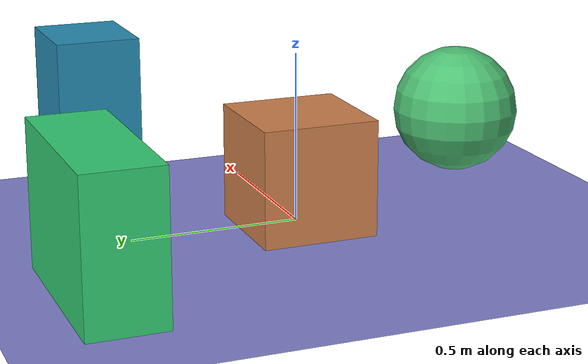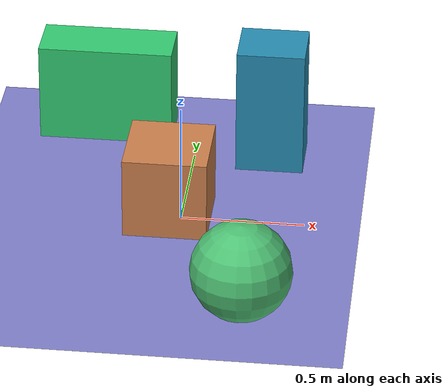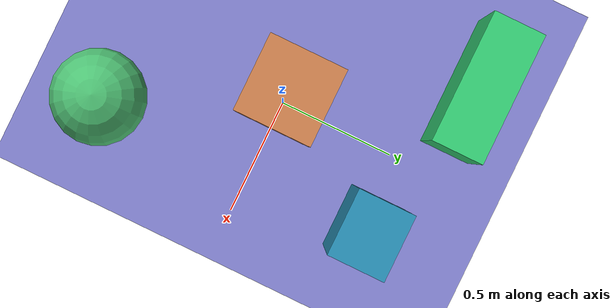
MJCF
<mujoco>
   <asset>
<texture type="skybox" builtin="gradient" rgb1="0.4 0.0 0.5" rgb2="0.7 0.8 0.7" width="256" height="256"/>
<texture name="checker_0" builtin="checker" type="2d" rgb1="0.3 0.8 0.8" rgb2="0.1 0.8 0.1" width="200" height="200"/>
<texture name="flat_1" builtin="flat" rgb1="0.8 0.5 0.3" rgb2="0.8 0.5 0.3"  width="200" height="200"/>
<texture name="checker_2" builtin="checker" type="2d" rgb1="0.1 0.6 0.5" rgb2="0.2 0.5 0.9" width="200" height="200"/>
<texture name="checker_3" builtin="checker" type="2d" rgb1="0.0 0.6 0.8" rgb2="0.6 0.9 0.1" width="200" height="200"/><material name="checker_0_mat" reflectance="0" texrepeat="10 10" texture="checker_0" texuniform="false" />
<material name="flat_1_mat" reflectance="0" texture="flat_1" texuniform="true"/>
<material name="checker_2_mat" reflectance="0" texrepeat="5 5" texture="checker_2" texuniform="false" />
<material name="checker_3_mat" reflectance="0" texrepeat="9 9" texture="checker_3" texuniform="false" />
   </asset>

   <worldbody>
      <light diffuse=".9 .9 .9" pos="0 0 3" dir="0 0 -1"/>
     <geom type="plane" size="1 1 0.1" rgba="0.5 0.5 0.8 1"/>
<geom type="box" pos="-0.39 0.7 0.21" size="0.28 0.11 0.21" material="checker_0_mat" />
<geom type="box" pos="-0.05 0.01 0.17" size="0.17 0.17 0.17" material="flat_1_mat" />
<geom type="box" pos="0.32 0.53 0.27" size="0.14 0.12 0.27" material="checker_2_mat" />
<geom type="sphere" pos="0.31 -0.68 0.2" size="0.2 0.2 0.2" material="checker_3_mat" /><camera euler="60 0 180" fovy="60" name="camera_a" pos="0 -1.5 1"></camera>   </worldbody>
</mujoco>
